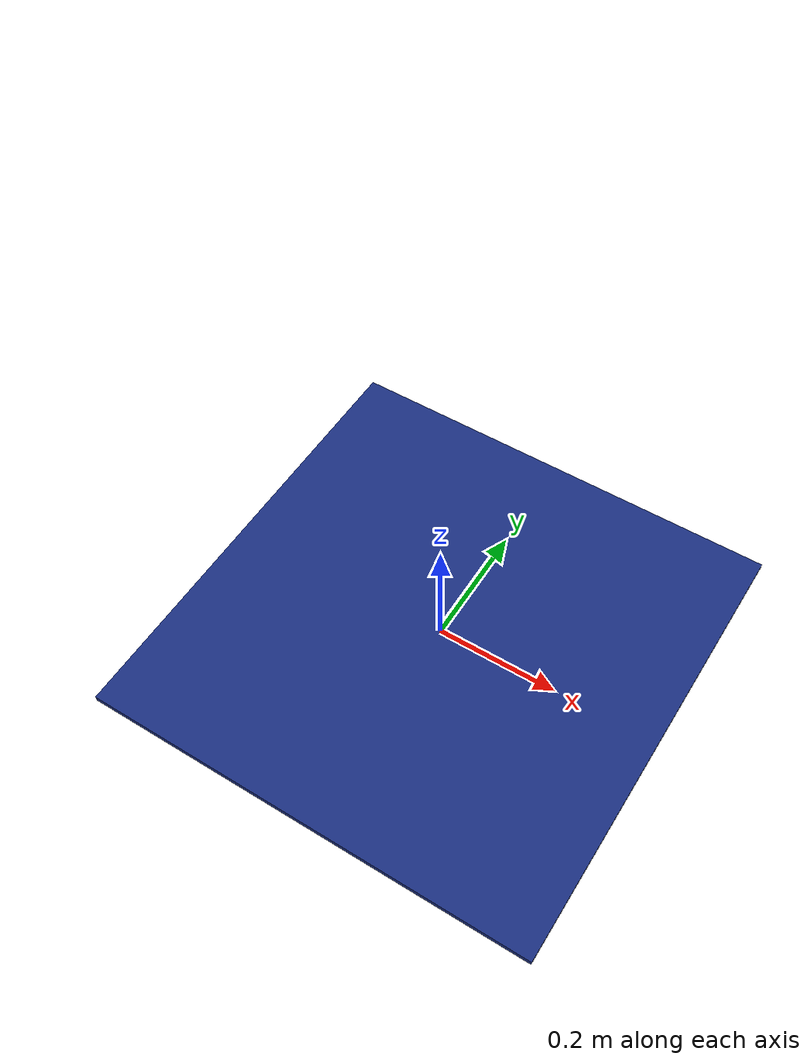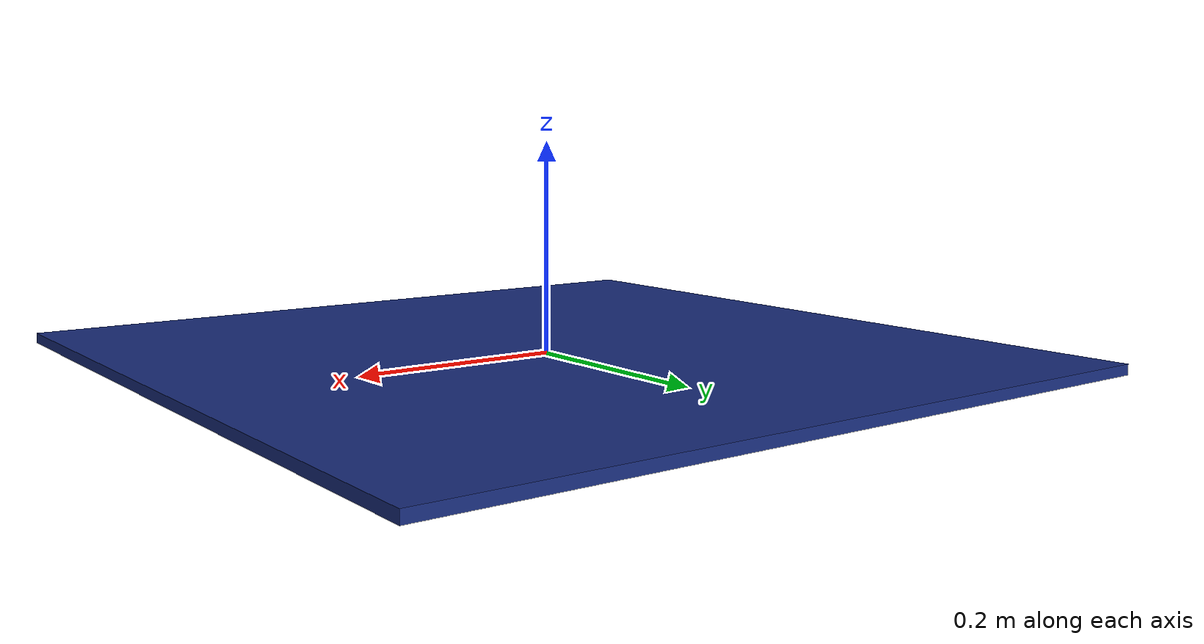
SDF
<?xml version="1.0" ?>
<sdf version="1.9">
  <model name="oil_slick">
    <static>true</static>
    <link name="link">
      <visual name="visual">
        <geometry><box><size>0.74 0.74 0.01</size></box></geometry>
        <material><ambient>0.10 0.18 0.50</ambient><diffuse>0.10 0.18 0.50</diffuse><shader type="pixel"/></material>
      </visual>
    </link>
  </model>
</sdf>
